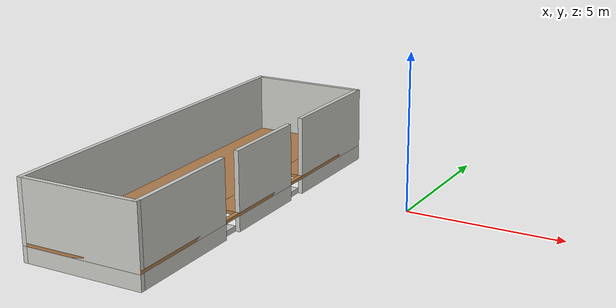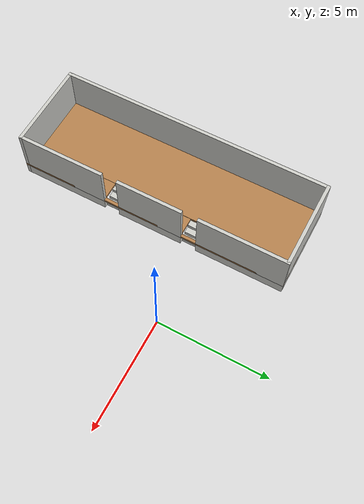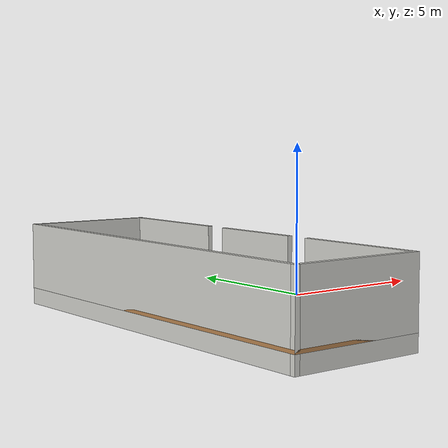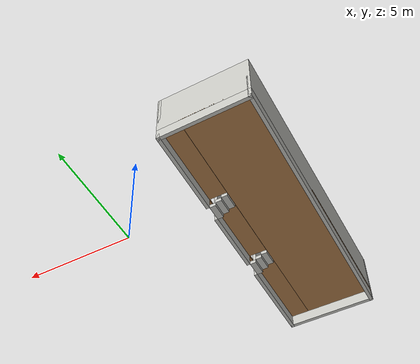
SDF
<?xml version='1.0'?>
<sdf version='1.7'>
  <model name='lab_floor2_wo_door'>
    <pose>-3.796 -2.367 0 0 -0 0</pose>
    <link name='Floor_0'>
      <pose>-1.796 0 0.5 0 -0 0</pose>
      <visual name='Floor_0_Visual_0'>
        <pose>-0.477952 0 0.05 0 -0 0</pose>
        <geometry>
          <box>
            <size>3.0441 12.4 0.1</size>
          </box>
        </geometry>
        <material>
          <script>
            <uri>file://media/materials/scripts/gazebo.material</uri>
            <name>Gazebo/Wood</name>
          </script>
          <ambient>1 1 1 1</ambient>
        </material>
        <meta>
          <layer>1</layer>
        </meta>
      </visual>
      <collision name='Floor_0_Collision_0'>
        <geometry>
          <box>
            <size>3.0441 12.4 0.1</size>
          </box>
        </geometry>
        <pose>-0.477952 0 0.05 0 -0 0</pose>
      </collision>
      <visual name='Floor_0_Visual_1'>
        <pose>1.52205 -4.20547 0.05 0 -0 0</pose>
        <geometry>
          <box>
            <size>0.955904 3.98906 0.1</size>
          </box>
        </geometry>
        <material>
          <script>
            <uri>file://media/materials/scripts/gazebo.material</uri>
            <name>Gazebo/Wood</name>
          </script>
          <ambient>1 1 1 1</ambient>
        </material>
        <meta>
          <layer>1</layer>
        </meta>
      </visual>
      <collision name='Floor_0_Collision_1'>
        <geometry>
          <box>
            <size>0.955904 3.98906 0.1</size>
          </box>
        </geometry>
        <pose>1.52205 -4.20547 0.05 0 -0 0</pose>
      </collision>
      <visual name='Floor_0_Visual_2'>
        <pose>1.92505 -0.361688 0.05 0 -0 0</pose>
        <geometry>
          <box>
            <size>0.149904 3.6985 0.1</size>
          </box>
        </geometry>
        <material>
          <script>
            <uri>file://media/materials/scripts/gazebo.material</uri>
            <name>Gazebo/Wood</name>
          </script>
          <ambient>1 1 1 1</ambient>
        </material>
        <meta>
          <layer>1</layer>
        </meta>
      </visual>
      <collision name='Floor_0_Collision_2'>
        <geometry>
          <box>
            <size>0.149904 3.6985 0.1</size>
          </box>
        </geometry>
        <pose>1.92505 -0.361688 0.05 0 -0 0</pose>
      </collision>
      <visual name='Floor_0_Visual_3'>
        <pose>1.04632 2.35003 0.05 0 -0 0</pose>
        <geometry>
          <box>
            <size>0.004439 7.69994 0.1</size>
          </box>
        </geometry>
        <material>
          <script>
            <uri>file://media/materials/scripts/gazebo.material</uri>
            <name>Gazebo/Wood</name>
          </script>
          <ambient>1 1 1 1</ambient>
        </material>
        <meta>
          <layer>1</layer>
        </meta>
      </visual>
      <collision name='Floor_0_Collision_3'>
        <geometry>
          <box>
            <size>0.004439 7.69994 0.1</size>
          </box>
        </geometry>
        <pose>1.04632 2.35003 0.05 0 -0 0</pose>
      </collision>
      <visual name='Floor_0_Visual_4'>
        <pose>1.44932 -0.006188 0.05 0 -0 0</pose>
        <geometry>
          <box>
            <size>0.801561 2.9875 0.1</size>
          </box>
        </geometry>
        <material>
          <script>
            <uri>file://media/materials/scripts/gazebo.material</uri>
            <name>Gazebo/Wood</name>
          </script>
          <ambient>1 1 1 1</ambient>
        </material>
        <meta>
          <layer>1</layer>
        </meta>
      </visual>
      <collision name='Floor_0_Collision_4'>
        <geometry>
          <box>
            <size>0.801561 2.9875 0.1</size>
          </box>
        </geometry>
        <pose>1.44932 -0.006188 0.05 0 -0 0</pose>
      </collision>
      <visual name='Floor_0_Visual_5'>
        <pose>1.92727 3.84378 0.05 0 -0 0</pose>
        <geometry>
          <box>
            <size>0.145465 4.71244 0.1</size>
          </box>
        </geometry>
        <material>
          <script>
            <uri>file://media/materials/scripts/gazebo.material</uri>
            <name>Gazebo/Wood</name>
          </script>
          <ambient>1 1 1 1</ambient>
        </material>
        <meta>
          <layer>1</layer>
        </meta>
      </visual>
      <collision name='Floor_0_Collision_5'>
        <geometry>
          <box>
            <size>0.145465 4.71244 0.1</size>
          </box>
        </geometry>
        <pose>1.92727 3.84378 0.05 0 -0 0</pose>
      </collision>
      <visual name='Floor_0_Visual_6'>
        <pose>1.44932 4.19928 0.05 0 -0 0</pose>
        <geometry>
          <box>
            <size>0.801561 4.00144 0.1</size>
          </box>
        </geometry>
        <material>
          <script>
            <uri>file://media/materials/scripts/gazebo.material</uri>
            <name>Gazebo/Wood</name>
          </script>
          <ambient>1 1 1 1</ambient>
        </material>
        <meta>
          <layer>1</layer>
        </meta>
      </visual>
      <collision name='Floor_0_Collision_6'>
        <geometry>
          <box>
            <size>0.801561 4.00144 0.1</size>
          </box>
        </geometry>
        <pose>1.44932 4.19928 0.05 0 -0 0</pose>
      </collision>
    </link>
    <link name='Stairs_1'>
      <visual name='Stairs_1_Visual_0'>
        <pose>-0.075798 1.84306 0.083333 0 -0 -1.5708</pose>
        <geometry>
          <box>
            <size>0.711 0.268667 0.166667</size>
          </box>
        </geometry>
        <material>
          <script>
            <uri>file://media/materials/scripts/gazebo.material</uri>
            <name>Gazebo/CeilingTiled</name>
          </script>
          <ambient>0.760784 0.662745 0.627451 1</ambient>
        </material>
        <meta>
          <layer>0</layer>
        </meta>
      </visual>
      <collision name='Stairs_1_Collision_0'>
        <geometry>
          <box>
            <size>0.711 0.268667 0.166667</size>
          </box>
        </geometry>
        <pose>-0.075798 1.84306 0.083333 0 -0 -1.5708</pose>
      </collision>
      <visual name='Stairs_1_Visual_1'>
        <pose>-0.344464 1.84306 0.25 0 -0 -1.5708</pose>
        <geometry>
          <box>
            <size>0.711 0.268667 0.166667</size>
          </box>
        </geometry>
        <material>
          <script>
            <uri>file://media/materials/scripts/gazebo.material</uri>
            <name>Gazebo/CeilingTiled</name>
          </script>
          <ambient>0.760784 0.662745 0.627451 1</ambient>
        </material>
        <meta>
          <layer>0</layer>
        </meta>
      </visual>
      <collision name='Stairs_1_Collision_1'>
        <geometry>
          <box>
            <size>0.711 0.268667 0.166667</size>
          </box>
        </geometry>
        <pose>-0.344464 1.84306 0.25 0 -0 -1.5708</pose>
      </collision>
      <visual name='Stairs_1_Visual_2'>
        <pose>-0.613131 1.84306 0.416667 0 -0 -1.5708</pose>
        <geometry>
          <box>
            <size>0.711 0.268667 0.166667</size>
          </box>
        </geometry>
        <material>
          <script>
            <uri>file://media/materials/scripts/gazebo.material</uri>
            <name>Gazebo/CeilingTiled</name>
          </script>
          <ambient>0.760784 0.662745 0.627451 1</ambient>
        </material>
        <meta>
          <layer>0</layer>
        </meta>
      </visual>
      <collision name='Stairs_1_Collision_2'>
        <geometry>
          <box>
            <size>0.711 0.268667 0.166667</size>
          </box>
        </geometry>
        <pose>-0.613131 1.84306 0.416667 0 -0 -1.5708</pose>
      </collision>
    </link>
    <link name='Stairs_3'>
      <visual name='Stairs_3_Visual_0'>
        <pose>-0.080237 -1.85544 0.083333 0 -0 -1.5708</pose>
        <geometry>
          <box>
            <size>0.711 0.268667 0.166667</size>
          </box>
        </geometry>
        <material>
          <script>
            <uri>file://media/materials/scripts/gazebo.material</uri>
            <name>Gazebo/CeilingTiled</name>
          </script>
          <ambient>0.760784 0.662745 0.627451 1</ambient>
        </material>
        <meta>
          <layer>0</layer>
        </meta>
      </visual>
      <collision name='Stairs_3_Collision_0'>
        <geometry>
          <box>
            <size>0.711 0.268667 0.166667</size>
          </box>
        </geometry>
        <pose>-0.080237 -1.85544 0.083333 0 -0 -1.5708</pose>
      </collision>
      <visual name='Stairs_3_Visual_1'>
        <pose>-0.348904 -1.85544 0.25 0 -0 -1.5708</pose>
        <geometry>
          <box>
            <size>0.711 0.268667 0.166667</size>
          </box>
        </geometry>
        <material>
          <script>
            <uri>file://media/materials/scripts/gazebo.material</uri>
            <name>Gazebo/CeilingTiled</name>
          </script>
          <ambient>0.760784 0.662745 0.627451 1</ambient>
        </material>
        <meta>
          <layer>0</layer>
        </meta>
      </visual>
      <collision name='Stairs_3_Collision_1'>
        <geometry>
          <box>
            <size>0.711 0.268667 0.166667</size>
          </box>
        </geometry>
        <pose>-0.348904 -1.85544 0.25 0 -0 -1.5708</pose>
      </collision>
      <visual name='Stairs_3_Visual_2'>
        <pose>-0.61757 -1.85544 0.416667 0 -0 -1.5708</pose>
        <geometry>
          <box>
            <size>0.711 0.268667 0.166667</size>
          </box>
        </geometry>
        <material>
          <script>
            <uri>file://media/materials/scripts/gazebo.material</uri>
            <name>Gazebo/CeilingTiled</name>
          </script>
          <ambient>0.760784 0.662745 0.627451 1</ambient>
        </material>
        <meta>
          <layer>0</layer>
        </meta>
      </visual>
      <collision name='Stairs_3_Collision_2'>
        <geometry>
          <box>
            <size>0.711 0.268667 0.166667</size>
          </box>
        </geometry>
        <pose>-0.61757 -1.85544 0.416667 0 -0 -1.5708</pose>
      </collision>
    </link>
    <link name='Wall_12'>
      <collision name='Wall_12_Collision'>
        <geometry>
          <box>
            <size>4 0.15 0.5</size>
          </box>
        </geometry>
        <pose>0 0 0.25 0 -0 0</pose>
      </collision>
      <visual name='Wall_12_Visual'>
        <pose>0 0 0.25 0 -0 0</pose>
        <geometry>
          <box>
            <size>4 0.15 0.5</size>
          </box>
        </geometry>
        <material>
          <script>
            <uri>file://media/materials/scripts/gazebo.material</uri>
            <name>Gazebo/CeilingTiled</name>
          </script>
          <ambient>0.760784 0.662745 0.627451 1</ambient>
        </material>
        <meta>
          <layer>0</layer>
        </meta>
      </visual>
      <pose>0.129 -4.2 0 0 -0 -1.5708</pose>
    </link>
    <link name='Wall_13'>
      <collision name='Wall_13_Collision'>
        <geometry>
          <box>
            <size>4 0.15 0.5</size>
          </box>
        </geometry>
        <pose>0 0 0.25 0 -0 0</pose>
      </collision>
      <visual name='Wall_13_Visual'>
        <pose>0 0 0.25 0 -0 0</pose>
        <geometry>
          <box>
            <size>4 0.15 0.5</size>
          </box>
        </geometry>
        <material>
          <script>
            <uri>file://media/materials/scripts/gazebo.material</uri>
            <name>Gazebo/CeilingTiled</name>
          </script>
          <ambient>0.760784 0.662745 0.627451 1</ambient>
        </material>
        <meta>
          <layer>0</layer>
        </meta>
      </visual>
      <pose>-1.796 -6.125 0 0 -0 3.14159</pose>
    </link>
    <link name='Wall_14'>
      <collision name='Wall_14_Collision'>
        <geometry>
          <box>
            <size>12.4 0.15 0.5</size>
          </box>
        </geometry>
        <pose>0 0 0.25 0 -0 0</pose>
      </collision>
      <visual name='Wall_14_Visual'>
        <pose>0 0 0.25 0 -0 0</pose>
        <geometry>
          <box>
            <size>12.4 0.15 0.5</size>
          </box>
        </geometry>
        <material>
          <script>
            <uri>file://media/materials/scripts/gazebo.material</uri>
            <name>Gazebo/CeilingTiled</name>
          </script>
          <ambient>0.760784 0.662745 0.627451 1</ambient>
        </material>
        <meta>
          <layer>0</layer>
        </meta>
      </visual>
      <pose>-3.721 0 0 0 -0 1.5708</pose>
    </link>
    <link name='Wall_16'>
      <collision name='Wall_16_Collision'>
        <geometry>
          <box>
            <size>4 0.15 2</size>
          </box>
        </geometry>
        <pose>0 0 1 0 -0 0</pose>
      </collision>
      <visual name='Wall_16_Visual'>
        <pose>0 0 1 0 -0 0</pose>
        <geometry>
          <box>
            <size>4 0.15 2</size>
          </box>
        </geometry>
        <material>
          <script>
            <uri>file://media/materials/scripts/gazebo.material</uri>
            <name>Gazebo/CeilingTiled</name>
          </script>
          <ambient>0.760784 0.662745 0.627451 1</ambient>
        </material>
        <meta>
          <layer>1</layer>
        </meta>
      </visual>
      <pose>-1.796 6.125 0.5 0 -0 0</pose>
    </link>
    <link name='Wall_17'>
      <collision name='Wall_17_Collision'>
        <geometry>
          <box>
            <size>4 0.15 2</size>
          </box>
        </geometry>
        <pose>0 0 1 0 -0 0</pose>
      </collision>
      <visual name='Wall_17_Visual'>
        <pose>0 0 1 0 -0 0</pose>
        <geometry>
          <box>
            <size>4 0.15 2</size>
          </box>
        </geometry>
        <material>
          <script>
            <uri>file://media/materials/scripts/gazebo.material</uri>
            <name>Gazebo/CeilingTiled</name>
          </script>
          <ambient>0.760784 0.662745 0.627451 1</ambient>
        </material>
        <meta>
          <layer>1</layer>
        </meta>
      </visual>
      <pose>0.129 4.2 0.5 0 -0 -1.5708</pose>
    </link>
    <link name='Wall_18'>
      <collision name='Wall_18_Collision'>
        <geometry>
          <box>
            <size>3 0.15 2</size>
          </box>
        </geometry>
        <pose>0 0 1 0 -0 0</pose>
      </collision>
      <visual name='Wall_18_Visual'>
        <pose>0 0 1 0 -0 0</pose>
        <geometry>
          <box>
            <size>3 0.15 2</size>
          </box>
        </geometry>
        <material>
          <script>
            <uri>file://media/materials/scripts/gazebo.material</uri>
            <name>Gazebo/CeilingTiled</name>
          </script>
          <ambient>0.760784 0.662745 0.627451 1</ambient>
        </material>
        <meta>
          <layer>1</layer>
        </meta>
      </visual>
      <pose>0.129 0 0.5 0 -0 -1.5708</pose>
    </link>
    <link name='Wall_19'>
      <collision name='Wall_19_Collision'>
        <geometry>
          <box>
            <size>4 0.15 2</size>
          </box>
        </geometry>
        <pose>0 0 1 0 -0 0</pose>
      </collision>
      <visual name='Wall_19_Visual'>
        <pose>0 0 1 0 -0 0</pose>
        <geometry>
          <box>
            <size>4 0.15 2</size>
          </box>
        </geometry>
        <material>
          <script>
            <uri>file://media/materials/scripts/gazebo.material</uri>
            <name>Gazebo/CeilingTiled</name>
          </script>
          <ambient>0.760784 0.662745 0.627451 1</ambient>
        </material>
        <meta>
          <layer>1</layer>
        </meta>
      </visual>
      <pose>0.129 -4.2 0.5 0 -0 -1.5708</pose>
    </link>
    <link name='Wall_20'>
      <collision name='Wall_20_Collision'>
        <geometry>
          <box>
            <size>4 0.15 2</size>
          </box>
        </geometry>
        <pose>0 0 1 0 -0 0</pose>
      </collision>
      <visual name='Wall_20_Visual'>
        <pose>0 0 1 0 -0 0</pose>
        <geometry>
          <box>
            <size>4 0.15 2</size>
          </box>
        </geometry>
        <material>
          <script>
            <uri>file://media/materials/scripts/gazebo.material</uri>
            <name>Gazebo/CeilingTiled</name>
          </script>
          <ambient>0.760784 0.662745 0.627451 1</ambient>
        </material>
        <meta>
          <layer>1</layer>
        </meta>
      </visual>
      <pose>-1.796 -6.125 0.5 0 -0 3.14159</pose>
    </link>
    <link name='Wall_21'>
      <collision name='Wall_21_Collision'>
        <geometry>
          <box>
            <size>12.4 0.15 2</size>
          </box>
        </geometry>
        <pose>0 0 1 0 -0 0</pose>
      </collision>
      <visual name='Wall_21_Visual'>
        <pose>0 0 1 0 -0 0</pose>
        <geometry>
          <box>
            <size>12.4 0.15 2</size>
          </box>
        </geometry>
        <material>
          <script>
            <uri>file://media/materials/scripts/gazebo.material</uri>
            <name>Gazebo/CeilingTiled</name>
          </script>
          <ambient>0.760784 0.662745 0.627451 1</ambient>
        </material>
        <meta>
          <layer>1</layer>
        </meta>
      </visual>
      <pose>-3.721 0 0.5 0 -0 1.5708</pose>
    </link>
    <link name='Wall_4'>
      <collision name='Wall_4_Collision'>
        <geometry>
          <box>
            <size>4 0.15 0.5</size>
          </box>
        </geometry>
        <pose>0 0 0.25 0 -0 0</pose>
      </collision>
      <visual name='Wall_4_Visual'>
        <pose>0 0 0.25 0 -0 0</pose>
        <geometry>
          <box>
            <size>4 0.15 0.5</size>
          </box>
        </geometry>
        <material>
          <script>
            <uri>file://media/materials/scripts/gazebo.material</uri>
            <name>Gazebo/CeilingTiled</name>
          </script>
          <ambient>0.760784 0.662745 0.627451 1</ambient>
        </material>
        <meta>
          <layer>0</layer>
        </meta>
      </visual>
      <pose>-1.796 6.125 0 0 -0 0</pose>
    </link>
    <link name='Wall_5'>
      <collision name='Wall_5_Collision'>
        <geometry>
          <box>
            <size>4 0.15 0.5</size>
          </box>
        </geometry>
        <pose>0 0 0.25 0 -0 0</pose>
      </collision>
      <visual name='Wall_5_Visual'>
        <pose>0 0 0.25 0 -0 0</pose>
        <geometry>
          <box>
            <size>4 0.15 0.5</size>
          </box>
        </geometry>
        <material>
          <script>
            <uri>file://media/materials/scripts/gazebo.material</uri>
            <name>Gazebo/CeilingTiled</name>
          </script>
          <ambient>0.760784 0.662745 0.627451 1</ambient>
        </material>
        <meta>
          <layer>0</layer>
        </meta>
      </visual>
      <pose>0.129 4.2 0 0 -0 -1.5708</pose>
    </link>
    <link name='Wall_8'>
      <collision name='Wall_8_Collision'>
        <geometry>
          <box>
            <size>3 0.15 0.5</size>
          </box>
        </geometry>
        <pose>0 0 0.25 0 -0 0</pose>
      </collision>
      <visual name='Wall_8_Visual'>
        <pose>0 0 0.25 0 -0 0</pose>
        <geometry>
          <box>
            <size>3 0.15 0.5</size>
          </box>
        </geometry>
        <material>
          <script>
            <uri>file://media/materials/scripts/gazebo.material</uri>
            <name>Gazebo/CeilingTiled</name>
          </script>
          <ambient>0.760784 0.662745 0.627451 1</ambient>
        </material>
        <meta>
          <layer>0</layer>
        </meta>
      </visual>
      <pose>0.129 0 0 0 -0 -1.5708</pose>
    </link>
    <static>1</static>
  </model>
</sdf>
